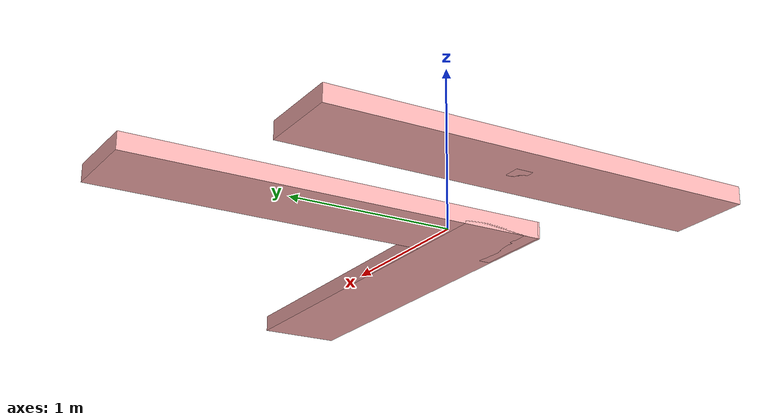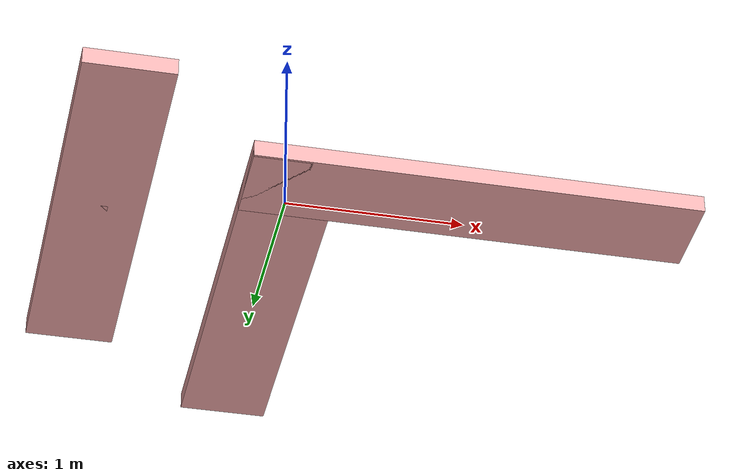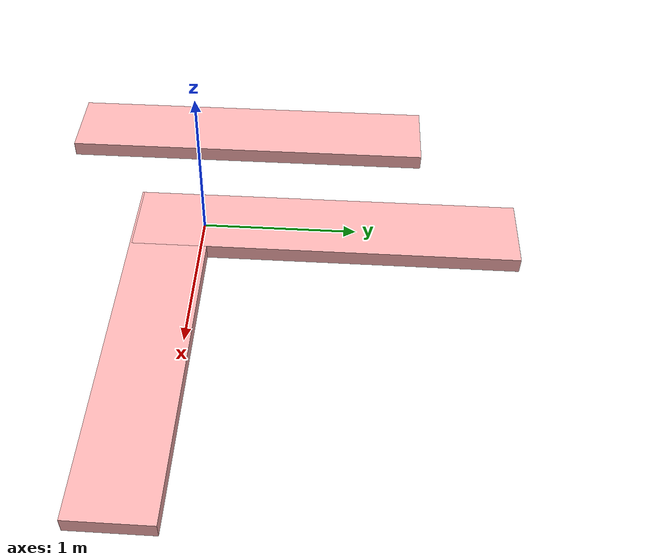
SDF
<?xml version='1.0'?>
<sdf version='1.6'>
  <model name='90deg'>
    <link name='link_0'>
      <pose frame=''>1 -0.206117 0 0 -0 0</pose>
      <visual name='ModelPreview_0::link_0::visual_1'>
        <pose frame=''>0 0 0 0 -0 0</pose>
        <geometry>
          <box>
            <size>2.5 0.5 0.1</size>
          </box>
        </geometry>
        <material>
          <lighting>1</lighting>
          <script>
            <uri>file://media/materials/scripts/gazebo.material</uri>
            <name>Gazebo/Grey</name>
          </script>
          <ambient>1 0.3 0.3 1</ambient>
          <diffuse>1 0.7 0.7 1</diffuse>
          <specular>1 0.01 0.01 1</specular>
          <emissive>1 0 0 1</emissive>
          <shader type='vertex'>
            <normal_map>__default__</normal_map>
          </shader>
        </material>
        <cast_shadows>1</cast_shadows>
        <transparency>0</transparency>
      </visual>
      <visual name='ModelPreview_0::link_0::visual_3'>
        <pose frame=''>0 0 0 0 -0 0</pose>
        <geometry>
          <box>
            <size>2.5 0.5 0.1</size>
          </box>
        </geometry>
        <material>
          <lighting>1</lighting>
          <script>
            <uri>file://media/materials/scripts/gazebo.material</uri>
            <name>Gazebo/Grey</name>
          </script>
          <ambient>1 0.3 0.3 1</ambient>
          <diffuse>1 0.7 0.7 1</diffuse>
          <specular>1 0.01 0.01 1</specular>
          <emissive>1 0 0 1</emissive>
          <shader type='vertex'>
            <normal_map>__default__</normal_map>
          </shader>
        </material>
        <cast_shadows>1</cast_shadows>
        <transparency>0</transparency>
      </visual>
      <visual name='visual'>
        <pose frame=''>0 0 0 0 -0 0</pose>
        <geometry>
          <box>
            <size>2.5 0.5 0.1</size>
          </box>
        </geometry>
        <material>
          <lighting>1</lighting>
          <script>
            <uri>file://media/materials/scripts/gazebo.material</uri>
            <name>Gazebo/Grey</name>
          </script>
          <ambient>1 0.3 0.3 1</ambient>
          <diffuse>1 0.7 0.7 1</diffuse>
          <specular>1 0.01 0.01 1</specular>
          <emissive>1 0 0 1</emissive>
          <shader type='vertex'>
            <normal_map>__default__</normal_map>
          </shader>
        </material>
        <cast_shadows>1</cast_shadows>
        <transparency>0</transparency>
      </visual>
      <visual name='ModelPreview_0::link_0::visual_2'>
        <pose frame=''>0 0 0 0 -0 0</pose>
        <geometry>
          <box>
            <size>2.5 0.5 0.1</size>
          </box>
        </geometry>
        <material>
          <lighting>1</lighting>
          <script>
            <uri>file://media/materials/scripts/gazebo.material</uri>
            <name>Gazebo/Grey</name>
          </script>
          <ambient>1 0.3 0.3 1</ambient>
          <diffuse>1 0.7 0.7 1</diffuse>
          <specular>1 0.01 0.01 1</specular>
          <emissive>1 0 0 1</emissive>
          <shader type='pixel'>
            <normal_map>__default__</normal_map>
          </shader>
        </material>
        <cast_shadows>1</cast_shadows>
        <transparency>0</transparency>
      </visual>
      <collision name='collision'>
        <laser_retro>0</laser_retro>
        <max_contacts>10</max_contacts>
        <pose frame=''>0 0 0 0 -0 0</pose>
        <geometry>
          <box>
            <size>2.5 0.5 0.1</size>
          </box>
        </geometry>
        <surface>
          <friction>
            <ode>
              <mu>1</mu>
              <mu2>1</mu2>
              <fdir1>0 0 0</fdir1>
              <slip1>0</slip1>
              <slip2>0</slip2>
            </ode>
            <torsional>
              <coefficient>1</coefficient>
              <patch_radius>0</patch_radius>
              <surface_radius>0</surface_radius>
              <use_patch_radius>1</use_patch_radius>
              <ode>
                <slip>0</slip>
              </ode>
            </torsional>
          </friction>
          <bounce>
            <restitution_coefficient>0</restitution_coefficient>
            <threshold>1e+06</threshold>
          </bounce>
          <contact>
            <collide_without_contact>0</collide_without_contact>
            <collide_without_contact_bitmask>1</collide_without_contact_bitmask>
            <collide_bitmask>1</collide_bitmask>
            <ode>
              <soft_cfm>0</soft_cfm>
              <soft_erp>0.2</soft_erp>
              <kp>1e+13</kp>
              <kd>1</kd>
              <max_vel>0.01</max_vel>
              <min_depth>0</min_depth>
            </ode>
            <bullet>
              <split_impulse>1</split_impulse>
              <split_impulse_penetration_threshold>-0.01</split_impulse_penetration_threshold>
              <soft_cfm>0</soft_cfm>
              <soft_erp>0.2</soft_erp>
              <kp>1e+13</kp>
              <kd>1</kd>
            </bullet>
          </contact>
        </surface>
      </collision>
    </link>
    <link name='link_1'>
      <pose frame=''>-1 0.206116 0 0 -0 0</pose>
      <visual name='ModelPreview_0::link_1::visual_5'>
        <pose frame=''>0 0 0 0 -0 0</pose>
        <geometry>
          <box>
            <size>0.5 2.5 0.1</size>
          </box>
        </geometry>
        <material>
          <lighting>1</lighting>
          <script>
            <uri>file://media/materials/scripts/gazebo.material</uri>
            <name>Gazebo/Grey</name>
          </script>
          <ambient>1 0.3 0.3 1</ambient>
          <diffuse>1 0.7 0.7 1</diffuse>
          <specular>1 0.01 0.01 1</specular>
          <emissive>1 0 0 1</emissive>
          <shader type='vertex'>
            <normal_map>__default__</normal_map>
          </shader>
        </material>
        <cast_shadows>1</cast_shadows>
        <transparency>0</transparency>
      </visual>
      <visual name='ModelPreview_0::link_1::visual_4'>
        <pose frame=''>0 0 0 0 -0 0</pose>
        <geometry>
          <box>
            <size>0.5 2.5 0.1</size>
          </box>
        </geometry>
        <material>
          <lighting>1</lighting>
          <script>
            <uri>file://media/materials/scripts/gazebo.material</uri>
            <name>Gazebo/Grey</name>
          </script>
          <ambient>1 0.3 0.3 1</ambient>
          <diffuse>1 0.7 0.7 1</diffuse>
          <specular>1 0.01 0.01 1</specular>
          <emissive>1 0 0 1</emissive>
          <shader type='vertex'>
            <normal_map>__default__</normal_map>
          </shader>
        </material>
        <cast_shadows>1</cast_shadows>
        <transparency>0</transparency>
      </visual>
      <visual name='ModelPreview_0::link_1::visual_1'>
        <pose frame=''>0 0 0 0 -0 0</pose>
        <geometry>
          <box>
            <size>0.5 2.5 0.1</size>
          </box>
        </geometry>
        <material>
          <lighting>1</lighting>
          <script>
            <uri>file://media/materials/scripts/gazebo.material</uri>
            <name>Gazebo/Grey</name>
          </script>
          <ambient>1 0.3 0.3 1</ambient>
          <diffuse>1 0.7 0.7 1</diffuse>
          <specular>1 0.01 0.01 1</specular>
          <emissive>1 0 0 1</emissive>
          <shader type='vertex'>
            <normal_map>__default__</normal_map>
          </shader>
        </material>
        <cast_shadows>1</cast_shadows>
        <transparency>0</transparency>
      </visual>
      <visual name='visual'>
        <pose frame=''>1 0.6 0 0 -0 0</pose>
        <geometry>
          <box>
            <size>0.5 2.5 0.1</size>
          </box>
        </geometry>
        <material>
          <lighting>1</lighting>
          <script>
            <uri>file://media/materials/scripts/gazebo.material</uri>
            <name>Gazebo/Grey</name>
          </script>
          <ambient>1 0.3 0.3 1</ambient>
          <diffuse>1 0.7 0.7 1</diffuse>
          <specular>1 0.01 0.01 1</specular>
          <emissive>1 0 0 1</emissive>
          <shader type='vertex'>
            <normal_map>__default__</normal_map>
          </shader>
        </material>
        <cast_shadows>1</cast_shadows>
        <transparency>0</transparency>
      </visual>
      <visual name='ModelPreview_0::link_1::visual_2'>
        <pose frame=''>0 0 0 0 -0 0</pose>
        <geometry>
          <box>
            <size>0.5 2.5 0.1</size>
          </box>
        </geometry>
        <material>
          <lighting>1</lighting>
          <script>
            <uri>file://media/materials/scripts/gazebo.material</uri>
            <name>Gazebo/Grey</name>
          </script>
          <ambient>1 0.3 0.3 1</ambient>
          <diffuse>1 0.7 0.7 1</diffuse>
          <specular>1 0.01 0.01 1</specular>
          <emissive>1 0 0 1</emissive>
          <shader type='vertex'>
            <normal_map>__default__</normal_map>
          </shader>
        </material>
        <cast_shadows>1</cast_shadows>
        <transparency>0</transparency>
      </visual>
      <visual name='ModelPreview_0::link_1::visual_3'>
        <pose frame=''>0 0 0 0 -0 0</pose>
        <geometry>
          <box>
            <size>0.1 0.1 0.1</size>
          </box>
        </geometry>
        <material>
          <lighting>1</lighting>
          <script>
            <uri>file://media/materials/scripts/gazebo.material</uri>
            <name>Gazebo/Grey</name>
          </script>
          <ambient>1 0.3 0.3 1</ambient>
          <diffuse>1 0.7 0.7 1</diffuse>
          <specular>1 0.01 0.01 1</specular>
          <emissive>1 0 0 1</emissive>
          <shader type='vertex'>
            <normal_map>__default__</normal_map>
          </shader>
        </material>
        <cast_shadows>1</cast_shadows>
        <transparency>0</transparency>
      </visual>
      <collision name='collision'>
        <laser_retro>0</laser_retro>
        <max_contacts>10</max_contacts>
        <pose frame=''>1 0.6 0 0 -0 0</pose>
        <geometry>
          <box>
            <size>0.5 2.5 0.1</size>
          </box>
        </geometry>
        <surface>
          <friction>
            <ode>
              <mu>1</mu>
              <mu2>1</mu2>
              <fdir1>0 0 0</fdir1>
              <slip1>0</slip1>
              <slip2>0</slip2>
            </ode>
            <torsional>
              <coefficient>1</coefficient>
              <patch_radius>0</patch_radius>
              <surface_radius>0</surface_radius>
              <use_patch_radius>1</use_patch_radius>
              <ode>
                <slip>0</slip>
              </ode>
            </torsional>
          </friction>
          <bounce>
            <restitution_coefficient>0</restitution_coefficient>
            <threshold>1e+06</threshold>
          </bounce>
          <contact>
            <collide_without_contact>0</collide_without_contact>
            <collide_without_contact_bitmask>1</collide_without_contact_bitmask>
            <collide_bitmask>1</collide_bitmask>
            <ode>
              <soft_cfm>0</soft_cfm>
              <soft_erp>0.2</soft_erp>
              <kp>1e+13</kp>
              <kd>1</kd>
              <max_vel>0.01</max_vel>
              <min_depth>0</min_depth>
            </ode>
            <bullet>
              <split_impulse>1</split_impulse>
              <split_impulse_penetration_threshold>-0.01</split_impulse_penetration_threshold>
              <soft_cfm>0</soft_cfm>
              <soft_erp>0.2</soft_erp>
              <kp>1e+13</kp>
              <kd>1</kd>
            </bullet>
          </contact>
        </surface>
      </collision>
    </link>
    <static>1</static>
    <allow_auto_disable>1</allow_auto_disable>
  </model>
</sdf>
